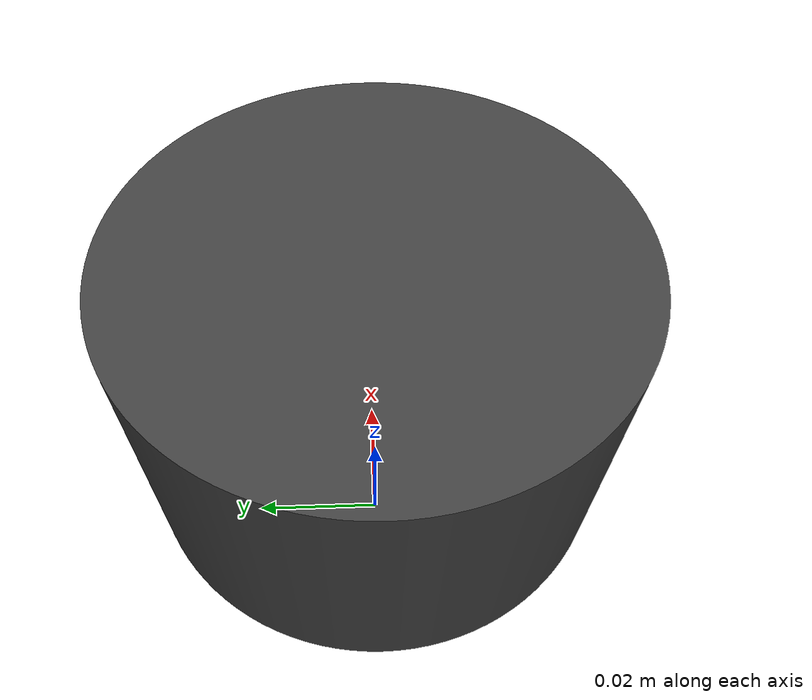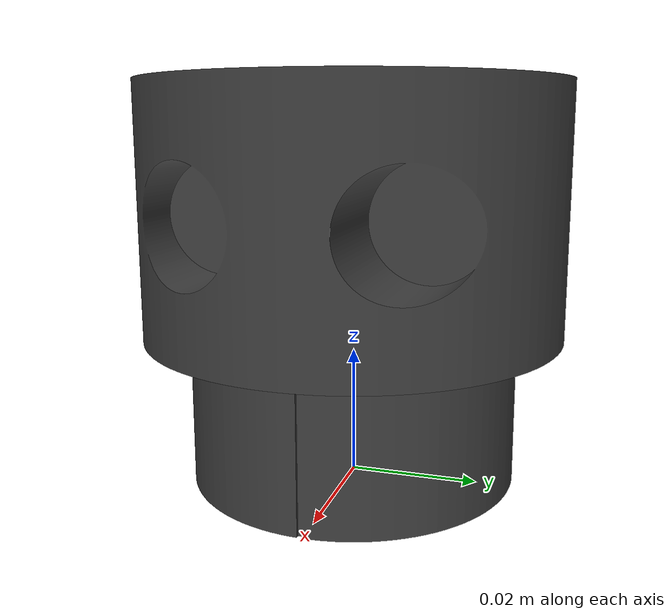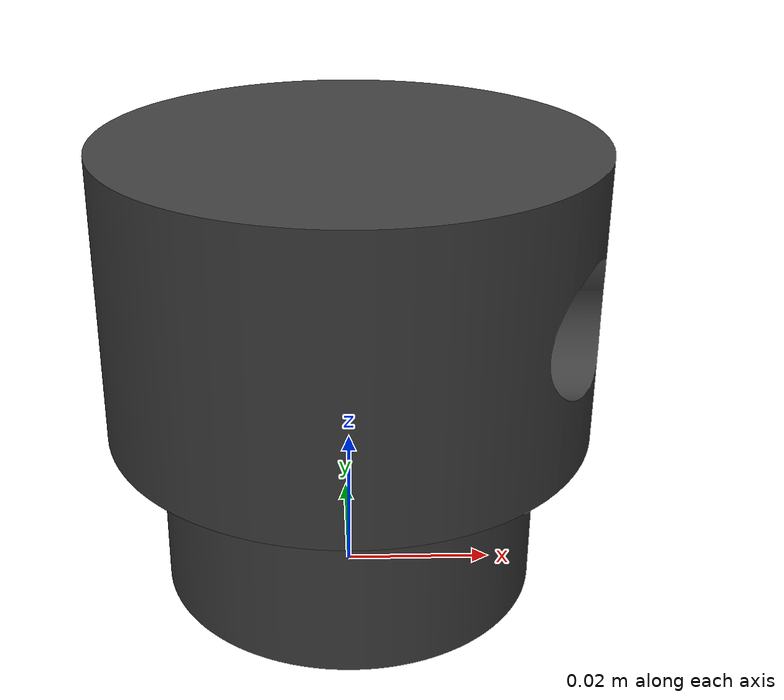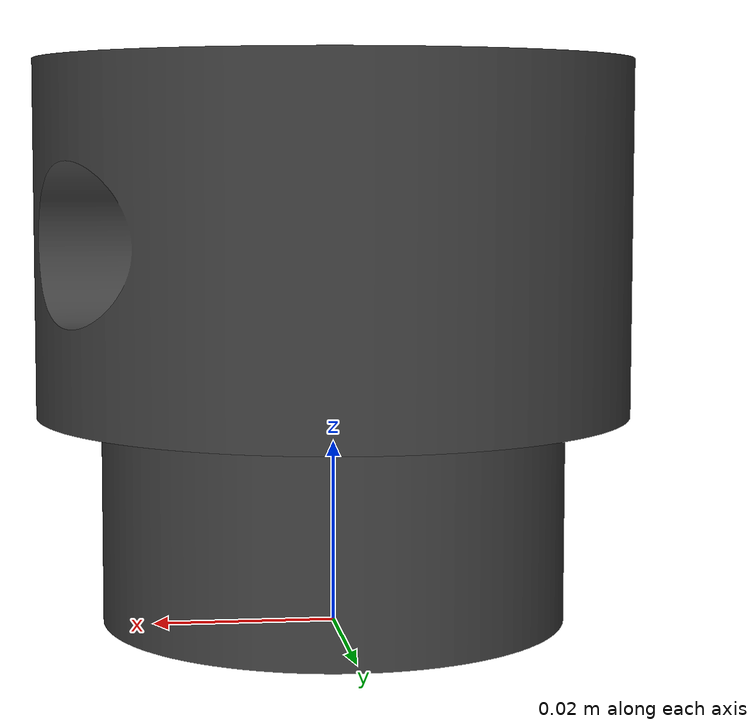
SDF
<?xml version='1.0'?>
<sdf version='1.7'>
  <model name='scanse_sweep'>
    <link name='base'>
      <pose>0 0 0.0117 0 -0 0</pose>
      <inertial>
        <mass>0.11</mass>
        <inertia>
          <ixx>2.2901e-05</ixx>
          <iyy>2.2901e-05</iyy>
          <izz>3.5764e-05</izz>
          <ixy>0</ixy>
          <ixz>0</ixz>
          <iyz>0</iyz>
        </inertia>
        <pose>0 0 0 0 -0 0</pose>
      </inertial>
      <self_collide>0</self_collide>
      <enable_wind>0</enable_wind>
      <kinematic>0</kinematic>
      <visual name='base_visual'>
        <geometry>
          <mesh>
            <uri>model://scanse_sweep/meshes/scanse_bottom.dae</uri>
          </mesh>
        </geometry>
        <material>
          <ambient>0.25 0.25 0.25 1</ambient>
          <diffuse>0.25 0.25 0.25 1</diffuse>
          <specular>0 0 0 0</specular>
          <emissive>0 0 0 0</emissive>
          <shader type='pixel'/>
          <script>
            <name>ModelPreview_4::base::base_visual_MATERIAL_</name>
            <uri>__default__</uri>
          </script>
        </material>
        <pose>0 0 0 0 -0 0</pose>
        <transparency>0</transparency>
        <cast_shadows>1</cast_shadows>
      </visual>
      <collision name='base_collision'>
        <laser_retro>0</laser_retro>
        <max_contacts>10</max_contacts>
        <pose>0 0 0 0 -0 0</pose>
        <geometry>
          <cylinder>
            <radius>0.0255</radius>
            <length>0.0234</length>
          </cylinder>
        </geometry>
        <surface>
          <friction>
            <ode>
              <mu>1</mu>
              <mu2>1</mu2>
              <fdir1>0 0 0</fdir1>
              <slip1>0</slip1>
              <slip2>0</slip2>
            </ode>
            <torsional>
              <coefficient>1</coefficient>
              <patch_radius>0</patch_radius>
              <surface_radius>0</surface_radius>
              <use_patch_radius>1</use_patch_radius>
              <ode>
                <slip>0</slip>
              </ode>
            </torsional>
          </friction>
          <bounce>
            <restitution_coefficient>0</restitution_coefficient>
            <threshold>1e+06</threshold>
          </bounce>
          <contact>
            <collide_without_contact>0</collide_without_contact>
            <collide_without_contact_bitmask>1</collide_without_contact_bitmask>
            <collide_bitmask>1</collide_bitmask>
            <ode>
              <soft_cfm>0</soft_cfm>
              <soft_erp>0.2</soft_erp>
              <kp>1e+13</kp>
              <kd>1</kd>
              <max_vel>0.01</max_vel>
              <min_depth>0</min_depth>
            </ode>
            <bullet>
              <split_impulse>1</split_impulse>
              <split_impulse_penetration_threshold>-0.01</split_impulse_penetration_threshold>
              <soft_cfm>0</soft_cfm>
              <soft_erp>0.2</soft_erp>
              <kp>1e+13</kp>
              <kd>1</kd>
            </bullet>
          </contact>
        </surface>
      </collision>
    </link>
    <link name='top'>
      <pose>0 0 0.04265 0 -0 0</pose>
      <inertial>
        <mass>0.01</mass>
        <inertia>
          <ixx>1.1798e-05</ixx>
          <iyy>1.1798e-05</iyy>
          <izz>2.1125e-05</izz>
          <ixy>0</ixy>
          <ixz>0</ixz>
          <iyz>0</iyz>
        </inertia>
        <pose>0 0 0 0 -0 0</pose>
      </inertial>
      <sensor name='sensor' type='ray'>
        <pose>0 0 -0.00105 0 -0 0</pose>
        <visualize>0</visualize>
        <update_rate>500</update_rate>
        <ray>
          <noise>
            <type>gaussian</type>
            <mean>0</mean>
            <stddev>0.01</stddev>
          </noise>
          <scan>
            <horizontal>
              <samples>360</samples>
              <resolution>1</resolution>
              <min_angle>0</min_angle>
              <max_angle>6.28319</max_angle>
            </horizontal>
            <vertical>
              <samples>1</samples>
              <min_angle>0</min_angle>
              <max_angle>0</max_angle>
            </vertical>
          </scan>
          <range>
            <min>0.05</min>
            <max>3.5</max>
            <resolution>0.015</resolution>
          </range>
        </ray>
        <plugin name='gazebo_ros_lds_lfcd_controller' filename='libgazebo_ros_laser.so'>
          <topicName>scan</topicName>
          <frameName>base_scan</frameName>
        </plugin>
      </sensor>
      <self_collide>0</self_collide>
      <enable_wind>0</enable_wind>
      <kinematic>0</kinematic>
      <visual name='top_visual'>
        <geometry>
          <mesh>
            <uri>model://scanse_sweep/meshes/scanse_top.dae</uri>
          </mesh>
        </geometry>
        <material>
          <ambient>0.25 0.25 0.25 1</ambient>
          <diffuse>0.25 0.25 0.25 1</diffuse>
          <specular>0 0 0 0</specular>
          <emissive>0 0 0 0</emissive>
          <shader type='pixel'/>
          <script>
            <name>ModelPreview_4::top::top_visual_MATERIAL_</name>
            <uri>__default__</uri>
          </script>
        </material>
        <pose>0 0 0 0 -0 0</pose>
        <transparency>0</transparency>
        <cast_shadows>1</cast_shadows>
      </visual>
      <collision name='top_collision'>
        <laser_retro>0</laser_retro>
        <max_contacts>10</max_contacts>
        <pose>0 0 0 0 -0 0</pose>
        <geometry>
          <cylinder>
            <radius>0.0325</radius>
            <length>0.0385</length>
          </cylinder>
        </geometry>
        <surface>
          <friction>
            <ode>
              <mu>1</mu>
              <mu2>1</mu2>
              <fdir1>0 0 0</fdir1>
              <slip1>0</slip1>
              <slip2>0</slip2>
            </ode>
            <torsional>
              <coefficient>1</coefficient>
              <patch_radius>0</patch_radius>
              <surface_radius>0</surface_radius>
              <use_patch_radius>1</use_patch_radius>
              <ode>
                <slip>0</slip>
              </ode>
            </torsional>
          </friction>
          <bounce>
            <restitution_coefficient>0</restitution_coefficient>
            <threshold>1e+06</threshold>
          </bounce>
          <contact>
            <collide_without_contact>0</collide_without_contact>
            <collide_without_contact_bitmask>1</collide_without_contact_bitmask>
            <collide_bitmask>1</collide_bitmask>
            <ode>
              <soft_cfm>0</soft_cfm>
              <soft_erp>0.2</soft_erp>
              <kp>1e+13</kp>
              <kd>1</kd>
              <max_vel>0.01</max_vel>
              <min_depth>0</min_depth>
            </ode>
            <bullet>
              <split_impulse>1</split_impulse>
              <split_impulse_penetration_threshold>-0.01</split_impulse_penetration_threshold>
              <soft_cfm>0</soft_cfm>
              <soft_erp>0.2</soft_erp>
              <kp>1e+13</kp>
              <kd>1</kd>
            </bullet>
          </contact>
        </surface>
      </collision>
    </link>
    <joint name='joint' type='revolute'>
      <parent>base</parent>
      <child>top</child>
      <pose>0 0 -0.01925 0 -0 0</pose>
      <axis>
        <xyz>0 0 1</xyz>
        <limit>
          <lower>-1e+16</lower>
          <upper>1e+16</upper>
          <effort>-1</effort>
          <velocity>-1</velocity>
        </limit>
        <dynamics>
          <spring_reference>0</spring_reference>
          <spring_stiffness>0</spring_stiffness>
          <damping>0</damping>
          <friction>0</friction>
        </dynamics>
      </axis>
      <physics>
        <ode>
          <limit>
            <cfm>0</cfm>
            <erp>0.2</erp>
          </limit>
          <suspension>
            <cfm>0</cfm>
            <erp>0.2</erp>
          </suspension>
        </ode>
      </physics>
    </joint>
    <static>1</static>
    <allow_auto_disable>1</allow_auto_disable>
  </model>
</sdf>
